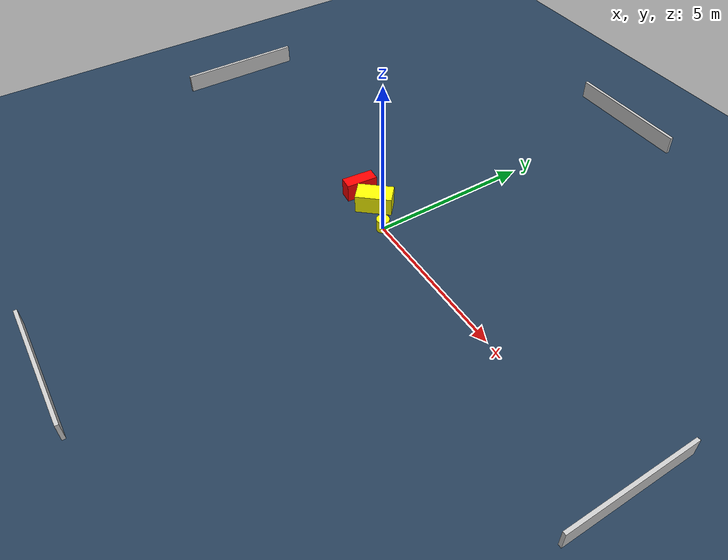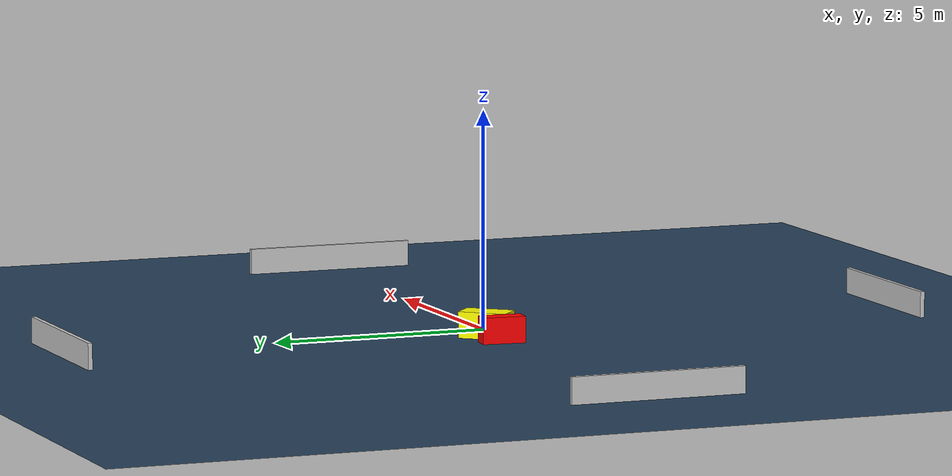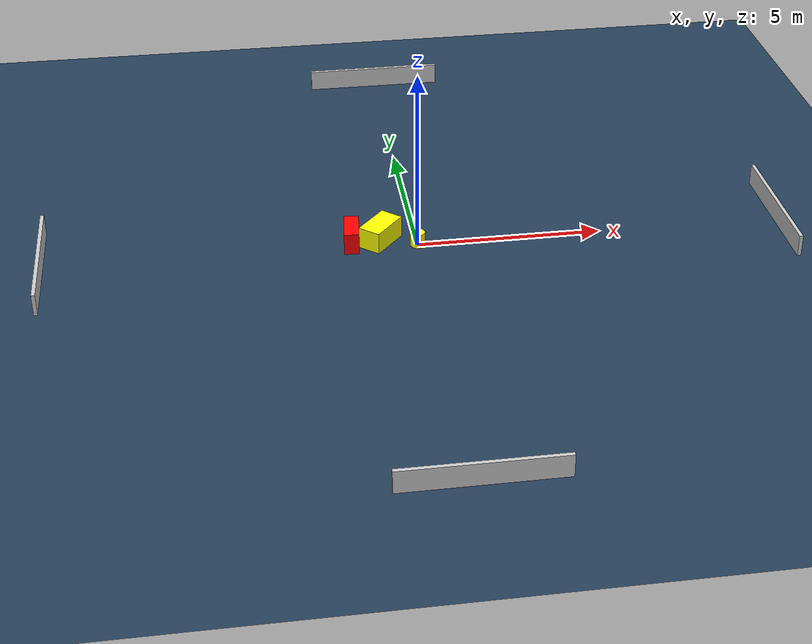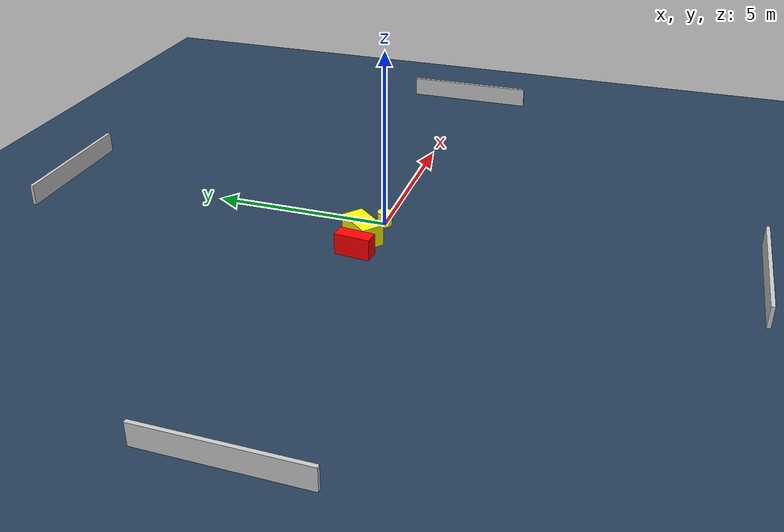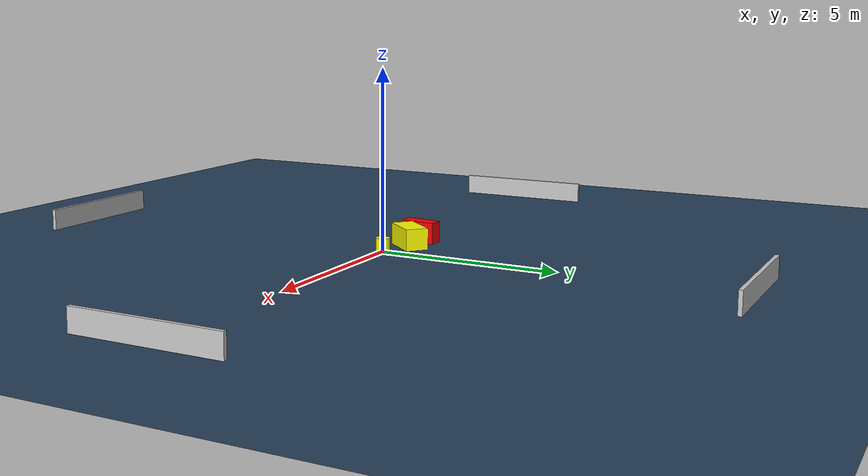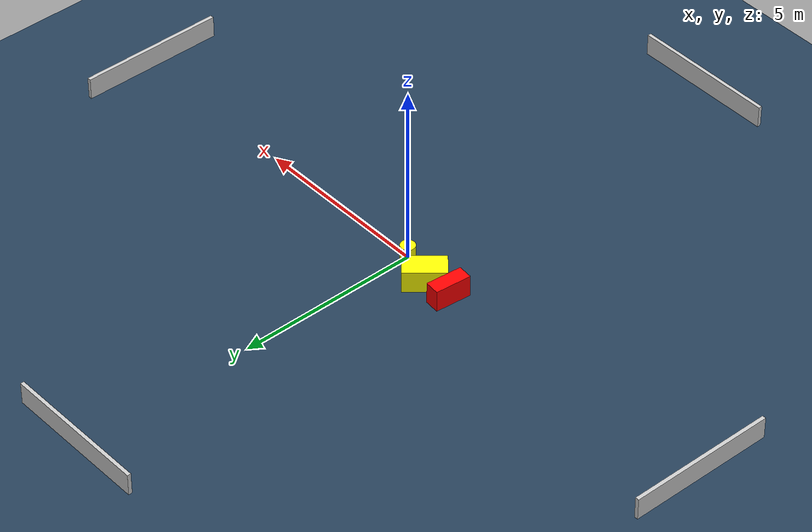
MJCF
<?xml version="1.0" ?>
<mujoco model="generated_environment">
  <option timestep="0.01" integrator="RK4" cone="elliptic"/>
  <default>
    <geom density="1"/>
  </default>
  <asset>
    <texture builtin="gradient" height="3072" name="skybox" rgb1="0.3 0.5 0.7" rgb2="0 0 0" type="skybox" width="512"/>
    <texture builtin="checker" height="300" name="groundplane" rgb1="0.2 0.3 0.4" rgb2="0.1 0.2 0.3" type="2d" width="300"/>
    <material name="groundplane" reflectance="0.2" texrepeat="5 5" texture="groundplane"/>
  </asset>
  <worldbody>
    <light dir="0 0 -1" directional="true" pos="0 0 1.5"/>
    <geom condim="3" friction="0.5 0.005 0.001" material="groundplane" name="floor" pos="0 0 0" size="0 0 0.05" type="plane"/>
    <body name="walls">
      <geom name="wall_1" condim="4" pos="-10.0 0.0 0.3" rgba="0.800000011920929 0.800000011920929 0.800000011920929 1.0" size="0.05 2.0 0.3" type="box"/>
      <geom name="wall_2" condim="4" pos="10.0 0.0 0.3" rgba="0.800000011920929 0.800000011920929 0.800000011920929 1.0" size="0.05 2.0 0.3" type="box"/>
      <geom name="wall_3" condim="4" pos="0.0 -10.0 0.3" rgba="0.800000011920929 0.800000011920929 0.800000011920929 1.0" size="2.0 0.05 0.3" type="box"/>
      <geom name="wall_4" condim="4" pos="0.0 10.0 0.3" rgba="0.800000011920929 0.800000011920929 0.800000011920929 1.0" size="2.0 0.05 0.3" type="box"/>
    </body>
    <body name="robot">
      <joint name="joint_x" type="slide" pos="0 0 0" axis="1 0 0"/>
      <joint name="joint_y" type="slide" pos="0 0 0" axis="0 1 0"/>
      <geom name="robot" type="cylinder" pos="0.0 0.0 0.2" size="0.2 0.2 0.0" mass="5.0" friction="1.0 0.005 0.0001" condim="4" rgba="1.0 1.0 0.0 1.0"/>
    </body>
    <body name="obstacle_1_movable">
      <geom name="obstacle_1_movable" condim="4" pos="-0.9685913854179143 0.31539851811716757 0.3" euler="0 0 49.343518556748215" friction="0.0 0.005 0.001" rgba="1.0 1.0 0.0 1.0" size="0.5601843990833968 0.3173417257623412 0.3" type="box" mass="0.1"/>
      <joint type="free"/>
    </body>
    <body name="obstacle_2_static">
      <geom name="obstacle_2_static" condim="4" pos="-1.7630729484673724 0.25887203098249895 0.3" euler="0 0 264.72181301815783" friction="0.0 0.005 0.001" rgba="1.0 0.0 0.0 1.0" size="0.4940420060924194 0.2020937348134134 0.3" type="box"/>
    </body>
  </worldbody>
  <actuator>
    <motor name="actuator_x" joint="joint_x" gear="1" ctrlrange="-1 1"/>
    <motor name="actuator_y" joint="joint_y" gear="1" ctrlrange="-1 1"/>
  </actuator>
</mujoco>
